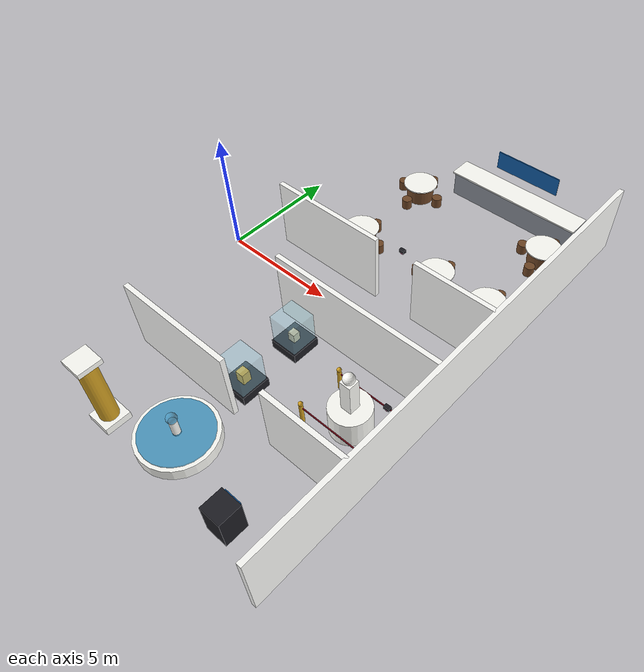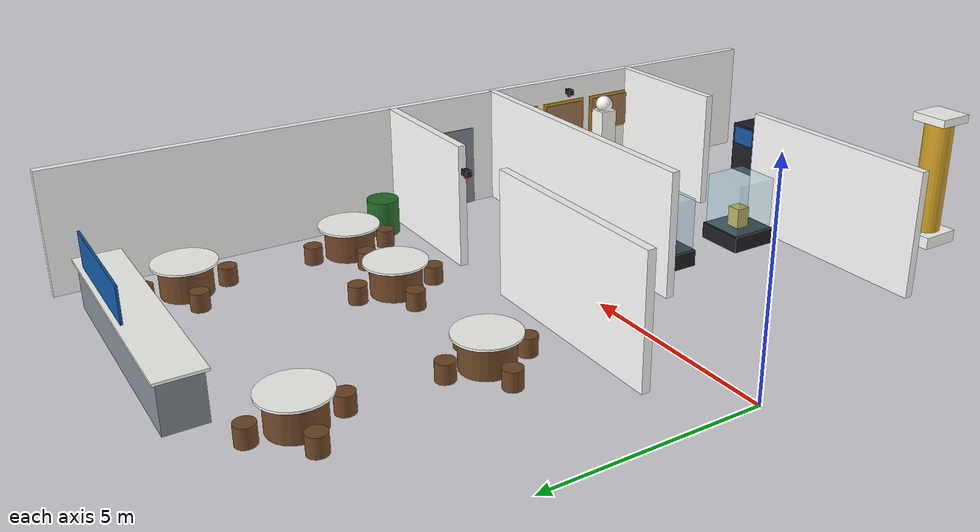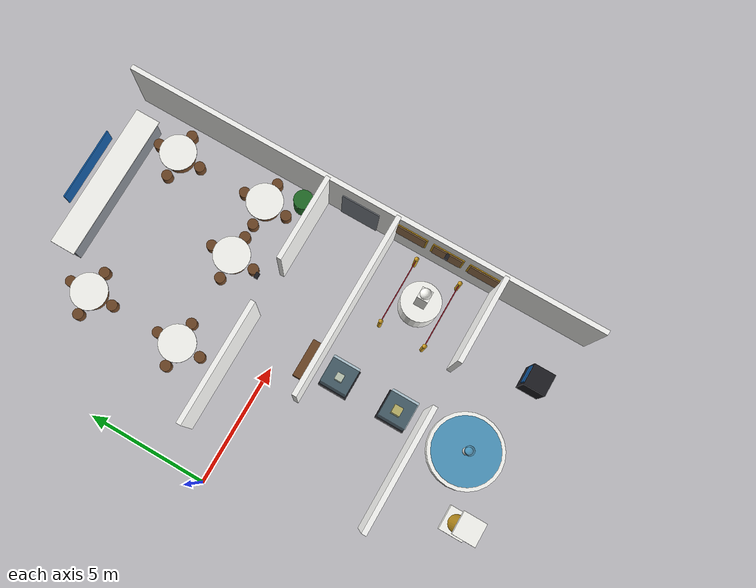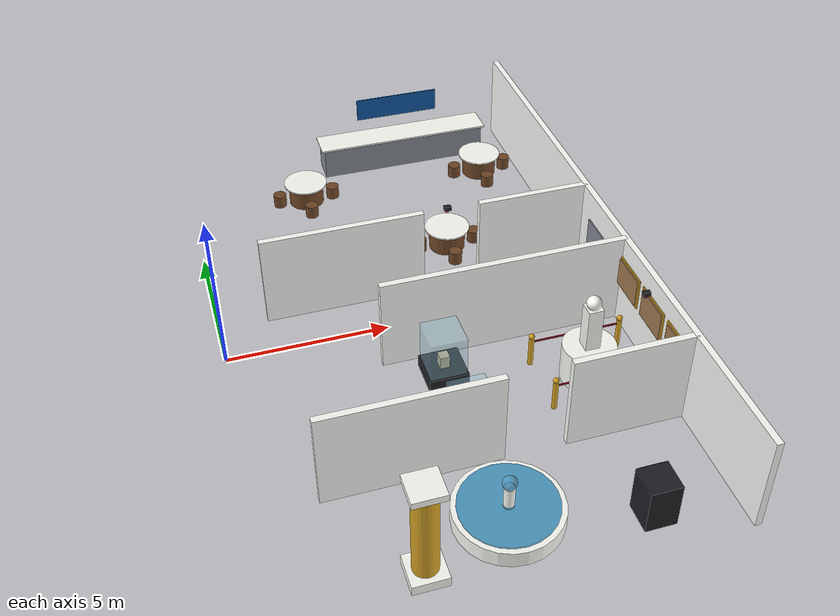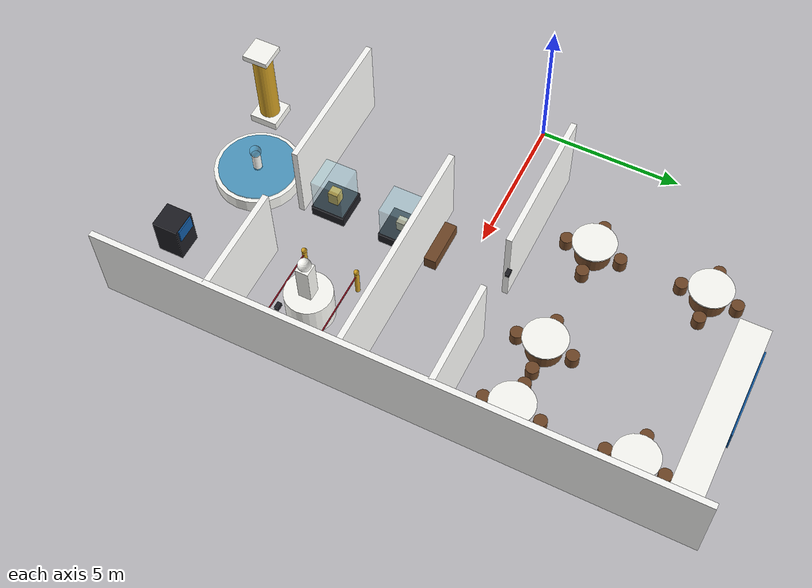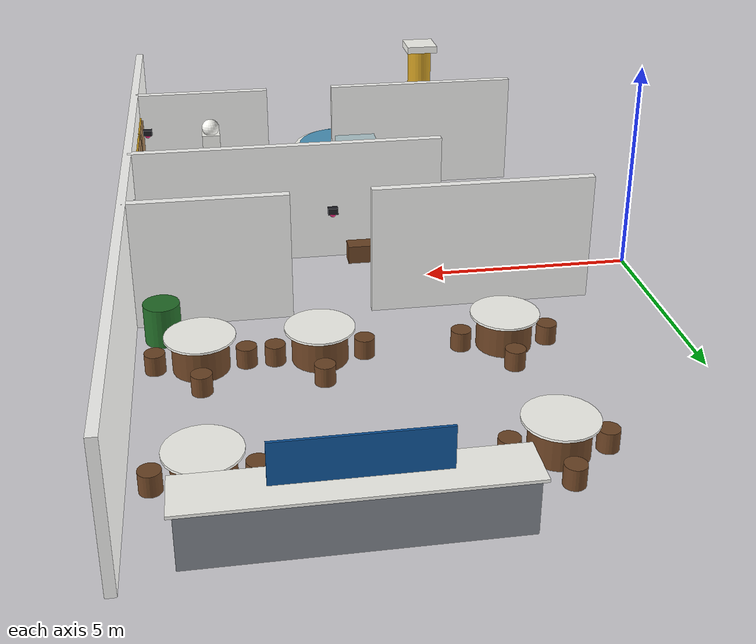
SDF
<sdf version="1.9">
 <world name="museum_world">
  <model name="centennial_robotics_museum">
   <static>true</static>
   <link name="outer_e_0">
    <pose>12.0 0.0 1.5 0 0 0.0</pose>
    <visual name="visual">
     <geometry><box><size>0.2 20.2 3.0</size></box></geometry>
     <material>
      <ambient>0.88 0.88 0.86 1.0</ambient>
      <diffuse>1.0 1.0 0.9889999999999999 1.0</diffuse>
      <specular>0.1 0.1 0.1 1</specular>
      <emissive>0.0 0.0 0.0 1</emissive>
     </material>
    </visual>
    <collision name="collision"><geometry><box><size>0.2 20.2 3.0</size></box></geometry></collision>
   </link>
   <link name="div_s_2">
    <pose>4.050000000000001 -6.0 1.5 0 0 0.0</pose>
    <visual name="visual">
     <geometry><box><size>5.1000000000000005 0.2 3.0</size></box></geometry>
     <material>
      <ambient>0.88 0.88 0.86 1.0</ambient>
      <diffuse>1.0 1.0 0.9889999999999999 1.0</diffuse>
      <specular>0.1 0.1 0.1 1</specular>
      <emissive>0.0 0.0 0.0 1</emissive>
     </material>
    </visual>
    <collision name="collision">
     <geometry><box><size>5.1000000000000005 0.2 3.0</size></box></geometry>
    </collision>
   </link>
   <link name="div_s_3">
    <pose>10.2 -6.0 1.5 0 0 0.0</pose>
    <visual name="visual">
     <geometry><box><size>3.5999999999999996 0.2 3.0</size></box></geometry>
     <material>
      <ambient>0.88 0.88 0.86 1.0</ambient>
      <diffuse>1.0 1.0 0.9889999999999999 1.0</diffuse>
      <specular>0.1 0.1 0.1 1</specular>
      <emissive>0.0 0.0 0.0 1</emissive>
     </material>
    </visual>
    <collision name="collision">
     <geometry><box><size>3.5999999999999996 0.2 3.0</size></box></geometry>
    </collision>
   </link>
   <link name="div_m_3">
    <pose>8.2 -1.5 1.5 0 0 0.0</pose>
    <visual name="visual">
     <geometry><box><size>7.6 0.2 3.0</size></box></geometry>
     <material>
      <ambient>0.88 0.88 0.86 1.0</ambient>
      <diffuse>1.0 1.0 0.9889999999999999 1.0</diffuse>
      <specular>0.1 0.1 0.1 1</specular>
      <emissive>0.0 0.0 0.0 1</emissive>
     </material>
    </visual>
    <collision name="collision"><geometry><box><size>7.6 0.2 3.0</size></box></geometry></collision>
   </link>
   <link name="div_n_2">
    <pose>4.050000000000001 1.5 1.5 0 0 0.0</pose>
    <visual name="visual">
     <geometry><box><size>5.1000000000000005 0.2 3.0</size></box></geometry>
     <material>
      <ambient>0.88 0.88 0.86 1.0</ambient>
      <diffuse>1.0 1.0 0.9889999999999999 1.0</diffuse>
      <specular>0.1 0.1 0.1 1</specular>
      <emissive>0.0 0.0 0.0 1</emissive>
     </material>
    </visual>
    <collision name="collision">
     <geometry><box><size>5.1000000000000005 0.2 3.0</size></box></geometry>
    </collision>
   </link>
   <link name="div_n_3">
    <pose>10.2 1.5 1.5 0 0 0.0</pose>
    <visual name="visual">
     <geometry><box><size>3.5999999999999996 0.2 3.0</size></box></geometry>
     <material>
      <ambient>0.88 0.88 0.86 1.0</ambient>
      <diffuse>1.0 1.0 0.9889999999999999 1.0</diffuse>
      <specular>0.1 0.1 0.1 1</specular>
      <emissive>0.0 0.0 0.0 1</emissive>
     </material>
    </visual>
    <collision name="collision">
     <geometry><box><size>3.5999999999999996 0.2 3.0</size></box></geometry>
    </collision>
   </link>
   <link name="fountain_basin">
    <pose>6.0 -8.0 0.25 0 0 0</pose>
    <visual name="visual">
     <geometry><cylinder><radius>1.5</radius><length>0.5</length></cylinder></geometry>
     <material>
      <ambient>0.9 0.89 0.85 1.0</ambient>
      <diffuse>1.0 1.0 0.9774999999999999 1.0</diffuse>
      <specular>0.8 0.8 0.8 1</specular>
      <emissive>0.0 0.0 0.0 1</emissive>
     </material>
    </visual>
    <collision name="collision">
     <geometry><cylinder><radius>1.5</radius><length>0.5</length></cylinder></geometry>
    </collision>
   </link>
   <link name="fountain_water">
    <pose>6.0 -8.0 0.52 0 0 0</pose>
    <visual name="visual">
     <geometry><cylinder><radius>1.35</radius><length>0.08</length></cylinder></geometry>
     <material>
      <ambient>0.05 0.42 0.62 0.7</ambient>
      <diffuse>0.057499999999999996 0.48299999999999993 0.713 0.7</diffuse>
      <specular>0.1 0.1 0.1 1</specular>
      <emissive>0.02 0.16 0.26 1</emissive>
     </material>
     <transparency>0.30</transparency>
    </visual>
   </link>
   <link name="fountain_spout">
    <pose>6.0 -8.0 0.85 0 0 0</pose>
    <visual name="visual">
     <geometry><cylinder><radius>0.15</radius><length>0.7</length></cylinder></geometry>
     <material>
      <ambient>0.9 0.89 0.85 1.0</ambient>
      <diffuse>1.0 1.0 0.9774999999999999 1.0</diffuse>
      <specular>0.8 0.8 0.8 1</specular>
      <emissive>0.0 0.0 0.0 1</emissive>
     </material>
    </visual>
   </link>
   <link name="fountain_droplet">
    <pose>6.0 -8.0 1.35 0 0 0.0</pose>
    <visual name="visual">
     <geometry><sphere><radius>0.2</radius></sphere></geometry>
     <material>
      <ambient>0.05 0.42 0.62 0.7</ambient>
      <diffuse>0.057499999999999996 0.48299999999999993 0.713 0.7</diffuse>
      <specular>0.1 0.1 0.1 1</specular>
      <emissive>0.02 0.16 0.26 1</emissive>
     </material>
     <transparency>0.30</transparency>
    </visual>
   </link>
   <link name="pillar_r_base">
    <pose>3.5 -9.0 0.15 0 0 0.0</pose>
    <visual name="visual">
     <geometry><box><size>1.0 1.0 0.3</size></box></geometry>
     <material>
      <ambient>0.9 0.89 0.85 1.0</ambient>
      <diffuse>1.0 1.0 0.9774999999999999 1.0</diffuse>
      <specular>0.8 0.8 0.8 1</specular>
      <emissive>0.0 0.0 0.0 1</emissive>
     </material>
    </visual>
    <collision name="collision"><geometry><box><size>1.0 1.0 0.3</size></box></geometry></collision>
   </link>
   <link name="pillar_r">
    <pose>3.5 -9.0 1.65 0 0 0</pose>
    <visual name="visual">
     <geometry><cylinder><radius>0.35</radius><length>3.0</length></cylinder></geometry>
     <material>
      <ambient>0.72 0.55 0.12 1.0</ambient>
      <diffuse>0.828 0.6325 0.13799999999999998 1.0</diffuse>
      <specular>1.0 0.9 0.6 1</specular>
      <emissive>0.0 0.0 0.0 1</emissive>
     </material>
    </visual>
    <collision name="collision">
     <geometry><cylinder><radius>0.35</radius><length>3.0</length></cylinder></geometry>
    </collision>
   </link>
   <link name="pillar_r_cap">
    <pose>3.5 -9.0 3.2 0 0 0.0</pose>
    <visual name="visual">
     <geometry><box><size>0.9 0.9 0.2</size></box></geometry>
     <material>
      <ambient>0.9 0.89 0.85 1.0</ambient>
      <diffuse>1.0 1.0 0.9774999999999999 1.0</diffuse>
      <specular>0.8 0.8 0.8 1</specular>
      <emissive>0.0 0.0 0.0 1</emissive>
     </material>
    </visual>
    <collision name="collision"><geometry><box><size>0.9 0.9 0.2</size></box></geometry></collision>
   </link>
   <link name="info_kiosk">
    <pose>9.6 -9.0 0.7 0 0 0.0</pose>
    <visual name="visual">
     <geometry><box><size>0.9 0.9 1.4</size></box></geometry>
     <material>
      <ambient>0.1 0.1 0.12 1.0</ambient>
      <diffuse>0.11499999999999999 0.11499999999999999 0.13799999999999998 1.0</diffuse>
      <specular>0.3 0.3 0.3 1</specular>
      <emissive>0.0 0.0 0.0 1</emissive>
     </material>
    </visual>
    <collision name="collision"><geometry><box><size>0.9 0.9 1.4</size></box></geometry></collision>
   </link>
   <link name="kiosk_screen">
    <pose>9.6 -8.53 1.1 0 0 0.0</pose>
    <visual name="visual">
     <geometry><box><size>0.7 0.05 0.5</size></box></geometry>
     <material>
      <ambient>0.05 0.3 0.55 1.0</ambient>
      <diffuse>0.057499999999999996 0.345 0.6325 1.0</diffuse>
      <specular>0.1 0.1 0.1 1</specular>
      <emissive>0.03 0.25 0.45 1</emissive>
     </material>
    </visual>
   </link>
   <link name="statue_pedestal">
    <pose>10.0 -3.75 0.6 0 0 0</pose>
    <visual name="visual">
     <geometry><cylinder><radius>0.8</radius><length>1.2</length></cylinder></geometry>
     <material>
      <ambient>0.9 0.89 0.85 1.0</ambient>
      <diffuse>1.0 1.0 0.9774999999999999 1.0</diffuse>
      <specular>0.8 0.8 0.8 1</specular>
      <emissive>0.0 0.0 0.0 1</emissive>
     </material>
    </visual>
    <collision name="collision">
     <geometry><cylinder><radius>0.8</radius><length>1.2</length></cylinder></geometry>
    </collision>
   </link>
   <link name="statue_body">
    <pose>10.0 -3.75 1.9 0 0 0.0</pose>
    <visual name="visual">
     <geometry><box><size>0.45 0.45 1.4</size></box></geometry>
     <material>
      <ambient>0.9 0.89 0.85 1.0</ambient>
      <diffuse>1.0 1.0 0.9774999999999999 1.0</diffuse>
      <specular>0.8 0.8 0.8 1</specular>
      <emissive>0.0 0.0 0.0 1</emissive>
     </material>
    </visual>
    <collision name="collision"><geometry><box><size>0.45 0.45 1.4</size></box></geometry></collision>
   </link>
   <link name="statue_head">
    <pose>10.0 -3.75 2.75 0 0 0.0</pose>
    <visual name="visual">
     <geometry><sphere><radius>0.22</radius></sphere></geometry>
     <material>
      <ambient>0.9 0.89 0.85 1.0</ambient>
      <diffuse>1.0 1.0 0.9774999999999999 1.0</diffuse>
      <specular>0.8 0.8 0.8 1</specular>
      <emissive>0.0 0.0 0.0 1</emissive>
     </material>
    </visual>
    <collision name="collision"><geometry><sphere><radius>0.22</radius></sphere></geometry></collision>
   </link>
   <link name="rope_post_0">
    <pose>8.6 -2.8 0.5 0 0 0</pose>
    <visual name="visual">
     <geometry><cylinder><radius>0.08</radius><length>1.0</length></cylinder></geometry>
     <material>
      <ambient>0.72 0.55 0.12 1.0</ambient>
      <diffuse>0.828 0.6325 0.13799999999999998 1.0</diffuse>
      <specular>1.0 0.9 0.6 1</specular>
      <emissive>0.0 0.0 0.0 1</emissive>
     </material>
    </visual>
    <collision name="collision">
     <geometry><cylinder><radius>0.08</radius><length>1.0</length></cylinder></geometry>
    </collision>
   </link>
   <link name="rope_knob_0">
    <pose>8.6 -2.8 1.05 0 0 0.0</pose>
    <visual name="visual">
     <geometry><sphere><radius>0.09</radius></sphere></geometry>
     <material>
      <ambient>0.72 0.55 0.12 1.0</ambient>
      <diffuse>0.828 0.6325 0.13799999999999998 1.0</diffuse>
      <specular>1.0 0.9 0.6 1</specular>
      <emissive>0.0 0.0 0.0 1</emissive>
     </material>
    </visual>
   </link>
   <link name="rope_post_1">
    <pose>8.6 -4.7 0.5 0 0 0</pose>
    <visual name="visual">
     <geometry><cylinder><radius>0.08</radius><length>1.0</length></cylinder></geometry>
     <material>
      <ambient>0.72 0.55 0.12 1.0</ambient>
      <diffuse>0.828 0.6325 0.13799999999999998 1.0</diffuse>
      <specular>1.0 0.9 0.6 1</specular>
      <emissive>0.0 0.0 0.0 1</emissive>
     </material>
    </visual>
    <collision name="collision">
     <geometry><cylinder><radius>0.08</radius><length>1.0</length></cylinder></geometry>
    </collision>
   </link>
   <link name="rope_knob_1">
    <pose>8.6 -4.7 1.05 0 0 0.0</pose>
    <visual name="visual">
     <geometry><sphere><radius>0.09</radius></sphere></geometry>
     <material>
      <ambient>0.72 0.55 0.12 1.0</ambient>
      <diffuse>0.828 0.6325 0.13799999999999998 1.0</diffuse>
      <specular>1.0 0.9 0.6 1</specular>
      <emissive>0.0 0.0 0.0 1</emissive>
     </material>
    </visual>
   </link>
   <link name="rope_post_2">
    <pose>11.4 -2.8 0.5 0 0 0</pose>
    <visual name="visual">
     <geometry><cylinder><radius>0.08</radius><length>1.0</length></cylinder></geometry>
     <material>
      <ambient>0.72 0.55 0.12 1.0</ambient>
      <diffuse>0.828 0.6325 0.13799999999999998 1.0</diffuse>
      <specular>1.0 0.9 0.6 1</specular>
      <emissive>0.0 0.0 0.0 1</emissive>
     </material>
    </visual>
    <collision name="collision">
     <geometry><cylinder><radius>0.08</radius><length>1.0</length></cylinder></geometry>
    </collision>
   </link>
   <link name="rope_knob_2">
    <pose>11.4 -2.8 1.05 0 0 0.0</pose>
    <visual name="visual">
     <geometry><sphere><radius>0.09</radius></sphere></geometry>
     <material>
      <ambient>0.72 0.55 0.12 1.0</ambient>
      <diffuse>0.828 0.6325 0.13799999999999998 1.0</diffuse>
      <specular>1.0 0.9 0.6 1</specular>
      <emissive>0.0 0.0 0.0 1</emissive>
     </material>
    </visual>
   </link>
   <link name="rope_post_3">
    <pose>11.4 -4.7 0.5 0 0 0</pose>
    <visual name="visual">
     <geometry><cylinder><radius>0.08</radius><length>1.0</length></cylinder></geometry>
     <material>
      <ambient>0.72 0.55 0.12 1.0</ambient>
      <diffuse>0.828 0.6325 0.13799999999999998 1.0</diffuse>
      <specular>1.0 0.9 0.6 1</specular>
      <emissive>0.0 0.0 0.0 1</emissive>
     </material>
    </visual>
    <collision name="collision">
     <geometry><cylinder><radius>0.08</radius><length>1.0</length></cylinder></geometry>
    </collision>
   </link>
   <link name="rope_knob_3">
    <pose>11.4 -4.7 1.05 0 0 0.0</pose>
    <visual name="visual">
     <geometry><sphere><radius>0.09</radius></sphere></geometry>
     <material>
      <ambient>0.72 0.55 0.12 1.0</ambient>
      <diffuse>0.828 0.6325 0.13799999999999998 1.0</diffuse>
      <specular>1.0 0.9 0.6 1</specular>
      <emissive>0.0 0.0 0.0 1</emissive>
     </material>
    </visual>
   </link>
   <link name="rope_span_a">
    <pose>10.0 -2.8 0.85 0 0 0.0</pose>
    <visual name="visual">
     <geometry><box><size>2.8 0.04 0.04</size></box></geometry>
     <material>
      <ambient>0.45 0.05 0.1 1.0</ambient>
      <diffuse>0.5175 0.057499999999999996 0.11499999999999999 1.0</diffuse>
      <specular>0.2 0.2 0.2 1</specular>
      <emissive>0.0 0.0 0.0 1</emissive>
     </material>
    </visual>
   </link>
   <link name="rope_span_b">
    <pose>10.0 -4.7 0.85 0 0 0.0</pose>
    <visual name="visual">
     <geometry><box><size>2.8 0.04 0.04</size></box></geometry>
     <material>
      <ambient>0.45 0.05 0.1 1.0</ambient>
      <diffuse>0.5175 0.057499999999999996 0.11499999999999999 1.0</diffuse>
      <specular>0.2 0.2 0.2 1</specular>
      <emissive>0.0 0.0 0.0 1</emissive>
     </material>
    </visual>
   </link>
   <link name="display_case_1_base">
    <pose>6.0 -5.0 0.2 0 0 0.0</pose>
    <visual name="visual">
     <geometry><box><size>1.2 1.2 0.4</size></box></geometry>
     <material>
      <ambient>0.1 0.1 0.12 1.0</ambient>
      <diffuse>0.11499999999999999 0.11499999999999999 0.13799999999999998 1.0</diffuse>
      <specular>0.3 0.3 0.3 1</specular>
      <emissive>0.0 0.0 0.0 1</emissive>
     </material>
    </visual>
    <collision name="collision"><geometry><box><size>1.2 1.2 0.4</size></box></geometry></collision>
   </link>
   <link name="display_case_1_glass">
    <pose>6.0 -5.0 1.05 0 0 0.0</pose>
    <visual name="visual">
     <geometry><box><size>1.1 1.1 1.3</size></box></geometry>
     <material>
      <ambient>0.55 0.78 0.85 0.35</ambient>
      <diffuse>0.6325 0.8969999999999999 0.9774999999999999 0.35</diffuse>
      <specular>1.0 1.0 1.0 1</specular>
      <emissive>0.0 0.0 0.0 1</emissive>
     </material>
     <transparency>0.65</transparency>
    </visual>
    <collision name="collision"><geometry><box><size>1.1 1.1 1.3</size></box></geometry></collision>
   </link>
   <link name="relic_1">
    <pose>6.0 -5.0 0.65 0 0 0.0</pose>
    <visual name="visual">
     <geometry><box><size>0.35 0.35 0.5</size></box></geometry>
     <material>
      <ambient>0.72 0.55 0.12 1.0</ambient>
      <diffuse>0.828 0.6325 0.13799999999999998 1.0</diffuse>
      <specular>1.0 0.9 0.6 1</specular>
      <emissive>0.0 0.0 0.0 1</emissive>
     </material>
    </visual>
   </link>
   <link name="display_case_2_base">
    <pose>6.0 -2.5 0.2 0 0 0.0</pose>
    <visual name="visual">
     <geometry><box><size>1.2 1.2 0.4</size></box></geometry>
     <material>
      <ambient>0.1 0.1 0.12 1.0</ambient>
      <diffuse>0.11499999999999999 0.11499999999999999 0.13799999999999998 1.0</diffuse>
      <specular>0.3 0.3 0.3 1</specular>
      <emissive>0.0 0.0 0.0 1</emissive>
     </material>
    </visual>
    <collision name="collision"><geometry><box><size>1.2 1.2 0.4</size></box></geometry></collision>
   </link>
   <link name="display_case_2_glass">
    <pose>6.0 -2.5 1.05 0 0 0.0</pose>
    <visual name="visual">
     <geometry><box><size>1.1 1.1 1.3</size></box></geometry>
     <material>
      <ambient>0.55 0.78 0.85 0.35</ambient>
      <diffuse>0.6325 0.8969999999999999 0.9774999999999999 0.35</diffuse>
      <specular>1.0 1.0 1.0 1</specular>
      <emissive>0.0 0.0 0.0 1</emissive>
     </material>
     <transparency>0.65</transparency>
    </visual>
    <collision name="collision"><geometry><box><size>1.1 1.1 1.3</size></box></geometry></collision>
   </link>
   <link name="relic_2">
    <pose>6.0 -2.5 0.6 0 0 0.0</pose>
    <visual name="visual">
     <geometry><box><size>0.3 0.3 0.4</size></box></geometry>
     <material>
      <ambient>0.72 0.66 0.52 1.0</ambient>
      <diffuse>0.828 0.759 0.598 1.0</diffuse>
      <specular>0.15 0.15 0.15 1</specular>
      <emissive>0.0 0.0 0.0 1</emissive>
     </material>
    </visual>
   </link>
   <link name="painting_0">
    <pose>11.85 -2.2 1.85 0 0 0.0</pose>
    <visual name="visual">
     <geometry><box><size>0.06 1.2 0.9</size></box></geometry>
     <material>
      <ambient>0.55 0.42 0.28 1.0</ambient>
      <diffuse>0.6325 0.48299999999999993 0.322 1.0</diffuse>
      <specular>0.1 0.1 0.1 1</specular>
      <emissive>0.0 0.0 0.0 1</emissive>
     </material>
    </visual>
   </link>
   <link name="painting_frame_0">
    <pose>11.88 -2.2 1.85 0 0 0.0</pose>
    <visual name="visual">
     <geometry><box><size>0.04 1.34 1.04</size></box></geometry>
     <material>
      <ambient>0.72 0.55 0.12 1.0</ambient>
      <diffuse>0.828 0.6325 0.13799999999999998 1.0</diffuse>
      <specular>1.0 0.9 0.6 1</specular>
      <emissive>0.0 0.0 0.0 1</emissive>
     </material>
    </visual>
   </link>
   <link name="painting_1">
    <pose>11.85 -3.75 1.85 0 0 0.0</pose>
    <visual name="visual">
     <geometry><box><size>0.06 1.2 0.9</size></box></geometry>
     <material>
      <ambient>0.55 0.42 0.28 1.0</ambient>
      <diffuse>0.6325 0.48299999999999993 0.322 1.0</diffuse>
      <specular>0.1 0.1 0.1 1</specular>
      <emissive>0.0 0.0 0.0 1</emissive>
     </material>
    </visual>
   </link>
   <link name="painting_frame_1">
    <pose>11.88 -3.75 1.85 0 0 0.0</pose>
    <visual name="visual">
     <geometry><box><size>0.04 1.34 1.04</size></box></geometry>
     <material>
      <ambient>0.72 0.55 0.12 1.0</ambient>
      <diffuse>0.828 0.6325 0.13799999999999998 1.0</diffuse>
      <specular>1.0 0.9 0.6 1</specular>
      <emissive>0.0 0.0 0.0 1</emissive>
     </material>
    </visual>
   </link>
   <link name="painting_2">
    <pose>11.85 -5.3 1.85 0 0 0.0</pose>
    <visual name="visual">
     <geometry><box><size>0.06 1.2 0.9</size></box></geometry>
     <material>
      <ambient>0.55 0.42 0.28 1.0</ambient>
      <diffuse>0.6325 0.48299999999999993 0.322 1.0</diffuse>
      <specular>0.1 0.1 0.1 1</specular>
      <emissive>0.0 0.0 0.0 1</emissive>
     </material>
    </visual>
   </link>
   <link name="painting_frame_2">
    <pose>11.88 -5.3 1.85 0 0 0.0</pose>
    <visual name="visual">
     <geometry><box><size>0.04 1.34 1.04</size></box></geometry>
     <material>
      <ambient>0.72 0.55 0.12 1.0</ambient>
      <diffuse>0.828 0.6325 0.13799999999999998 1.0</diffuse>
      <specular>1.0 0.9 0.6 1</specular>
      <emissive>0.0 0.0 0.0 1</emissive>
     </material>
    </visual>
   </link>
   <link name="cafe_counter">
    <pose>8.0 9.2 0.55 0 0 0.0</pose>
    <visual name="visual">
     <geometry><box><size>6.0 0.9 1.1</size></box></geometry>
     <material>
      <ambient>0.45 0.47 0.5 1.0</ambient>
      <diffuse>0.5175 0.5405 0.575 1.0</diffuse>
      <specular>0.7 0.7 0.7 1</specular>
      <emissive>0.0 0.0 0.0 1</emissive>
     </material>
    </visual>
    <collision name="collision"><geometry><box><size>6.0 0.9 1.1</size></box></geometry></collision>
   </link>
   <link name="cafe_counter_top">
    <pose>8.0 9.2 1.13 0 0 0.0</pose>
    <visual name="visual">
     <geometry><box><size>6.2 1.05 0.06</size></box></geometry>
     <material>
      <ambient>0.9 0.89 0.85 1.0</ambient>
      <diffuse>1.0 1.0 0.9774999999999999 1.0</diffuse>
      <specular>0.8 0.8 0.8 1</specular>
      <emissive>0.0 0.0 0.0 1</emissive>
     </material>
    </visual>
    <collision name="collision"><geometry><box><size>6.2 1.05 0.06</size></box></geometry></collision>
   </link>
   <link name="cafe_menu">
    <pose>8.0 9.75 2.0 0 0 0.0</pose>
    <visual name="visual">
     <geometry><box><size>3.0 0.05 0.8</size></box></geometry>
     <material>
      <ambient>0.05 0.3 0.55 1.0</ambient>
      <diffuse>0.057499999999999996 0.345 0.6325 1.0</diffuse>
      <specular>0.1 0.1 0.1 1</specular>
      <emissive>0.03 0.25 0.45 1</emissive>
     </material>
    </visual>
   </link>
   <link name="cafe_table_0">
    <pose>4.0 3.5 0.37 0 0 0</pose>
    <visual name="visual">
     <geometry><cylinder><radius>0.6</radius><length>0.74</length></cylinder></geometry>
     <material>
      <ambient>0.38 0.24 0.13 1.0</ambient>
      <diffuse>0.43699999999999994 0.27599999999999997 0.1495 1.0</diffuse>
      <specular>0.2 0.2 0.2 1</specular>
      <emissive>0.0 0.0 0.0 1</emissive>
     </material>
    </visual>
    <collision name="collision">
     <geometry><cylinder><radius>0.6</radius><length>0.74</length></cylinder></geometry>
    </collision>
   </link>
   <link name="cafe_table_top_0">
    <pose>4.0 3.5 0.76 0 0 0</pose>
    <visual name="visual">
     <geometry><cylinder><radius>0.75</radius><length>0.05</length></cylinder></geometry>
     <material>
      <ambient>0.9 0.89 0.85 1.0</ambient>
      <diffuse>1.0 1.0 0.9774999999999999 1.0</diffuse>
      <specular>0.8 0.8 0.8 1</specular>
      <emissive>0.0 0.0 0.0 1</emissive>
     </material>
    </visual>
   </link>
   <link name="cafe_chair_0_0">
    <pose>4.95 3.5 0.22 0 0 0</pose>
    <visual name="visual">
     <geometry><cylinder><radius>0.22</radius><length>0.44</length></cylinder></geometry>
     <material>
      <ambient>0.38 0.24 0.13 1.0</ambient>
      <diffuse>0.43699999999999994 0.27599999999999997 0.1495 1.0</diffuse>
      <specular>0.2 0.2 0.2 1</specular>
      <emissive>0.0 0.0 0.0 1</emissive>
     </material>
    </visual>
    <collision name="collision">
     <geometry><cylinder><radius>0.22</radius><length>0.44</length></cylinder></geometry>
    </collision>
   </link>
   <link name="cafe_chair_0_1">
    <pose>3.05 3.5 0.22 0 0 0</pose>
    <visual name="visual">
     <geometry><cylinder><radius>0.22</radius><length>0.44</length></cylinder></geometry>
     <material>
      <ambient>0.38 0.24 0.13 1.0</ambient>
      <diffuse>0.43699999999999994 0.27599999999999997 0.1495 1.0</diffuse>
      <specular>0.2 0.2 0.2 1</specular>
      <emissive>0.0 0.0 0.0 1</emissive>
     </material>
    </visual>
    <collision name="collision">
     <geometry><cylinder><radius>0.22</radius><length>0.44</length></cylinder></geometry>
    </collision>
   </link>
   <link name="cafe_chair_0_2">
    <pose>4.0 4.45 0.22 0 0 0</pose>
    <visual name="visual">
     <geometry><cylinder><radius>0.22</radius><length>0.44</length></cylinder></geometry>
     <material>
      <ambient>0.38 0.24 0.13 1.0</ambient>
      <diffuse>0.43699999999999994 0.27599999999999997 0.1495 1.0</diffuse>
      <specular>0.2 0.2 0.2 1</specular>
      <emissive>0.0 0.0 0.0 1</emissive>
     </material>
    </visual>
    <collision name="collision">
     <geometry><cylinder><radius>0.22</radius><length>0.44</length></cylinder></geometry>
    </collision>
   </link>
   <link name="cafe_chair_0_3">
    <pose>4.0 2.55 0.22 0 0 0</pose>
    <visual name="visual">
     <geometry><cylinder><radius>0.22</radius><length>0.44</length></cylinder></geometry>
     <material>
      <ambient>0.38 0.24 0.13 1.0</ambient>
      <diffuse>0.43699999999999994 0.27599999999999997 0.1495 1.0</diffuse>
      <specular>0.2 0.2 0.2 1</specular>
      <emissive>0.0 0.0 0.0 1</emissive>
     </material>
    </visual>
    <collision name="collision">
     <geometry><cylinder><radius>0.22</radius><length>0.44</length></cylinder></geometry>
    </collision>
   </link>
   <link name="cafe_table_1">
    <pose>8.0 3.5 0.37 0 0 0</pose>
    <visual name="visual">
     <geometry><cylinder><radius>0.6</radius><length>0.74</length></cylinder></geometry>
     <material>
      <ambient>0.38 0.24 0.13 1.0</ambient>
      <diffuse>0.43699999999999994 0.27599999999999997 0.1495 1.0</diffuse>
      <specular>0.2 0.2 0.2 1</specular>
      <emissive>0.0 0.0 0.0 1</emissive>
     </material>
    </visual>
    <collision name="collision">
     <geometry><cylinder><radius>0.6</radius><length>0.74</length></cylinder></geometry>
    </collision>
   </link>
   <link name="cafe_table_top_1">
    <pose>8.0 3.5 0.76 0 0 0</pose>
    <visual name="visual">
     <geometry><cylinder><radius>0.75</radius><length>0.05</length></cylinder></geometry>
     <material>
      <ambient>0.9 0.89 0.85 1.0</ambient>
      <diffuse>1.0 1.0 0.9774999999999999 1.0</diffuse>
      <specular>0.8 0.8 0.8 1</specular>
      <emissive>0.0 0.0 0.0 1</emissive>
     </material>
    </visual>
   </link>
   <link name="cafe_chair_1_0">
    <pose>8.95 3.5 0.22 0 0 0</pose>
    <visual name="visual">
     <geometry><cylinder><radius>0.22</radius><length>0.44</length></cylinder></geometry>
     <material>
      <ambient>0.38 0.24 0.13 1.0</ambient>
      <diffuse>0.43699999999999994 0.27599999999999997 0.1495 1.0</diffuse>
      <specular>0.2 0.2 0.2 1</specular>
      <emissive>0.0 0.0 0.0 1</emissive>
     </material>
    </visual>
    <collision name="collision">
     <geometry><cylinder><radius>0.22</radius><length>0.44</length></cylinder></geometry>
    </collision>
   </link>
   <link name="cafe_chair_1_1">
    <pose>7.05 3.5 0.22 0 0 0</pose>
    <visual name="visual">
     <geometry><cylinder><radius>0.22</radius><length>0.44</length></cylinder></geometry>
     <material>
      <ambient>0.38 0.24 0.13 1.0</ambient>
      <diffuse>0.43699999999999994 0.27599999999999997 0.1495 1.0</diffuse>
      <specular>0.2 0.2 0.2 1</specular>
      <emissive>0.0 0.0 0.0 1</emissive>
     </material>
    </visual>
    <collision name="collision">
     <geometry><cylinder><radius>0.22</radius><length>0.44</length></cylinder></geometry>
    </collision>
   </link>
   <link name="cafe_chair_1_2">
    <pose>8.0 4.45 0.22 0 0 0</pose>
    <visual name="visual">
     <geometry><cylinder><radius>0.22</radius><length>0.44</length></cylinder></geometry>
     <material>
      <ambient>0.38 0.24 0.13 1.0</ambient>
      <diffuse>0.43699999999999994 0.27599999999999997 0.1495 1.0</diffuse>
      <specular>0.2 0.2 0.2 1</specular>
      <emissive>0.0 0.0 0.0 1</emissive>
     </material>
    </visual>
    <collision name="collision">
     <geometry><cylinder><radius>0.22</radius><length>0.44</length></cylinder></geometry>
    </collision>
   </link>
   <link name="cafe_chair_1_3">
    <pose>8.0 2.55 0.22 0 0 0</pose>
    <visual name="visual">
     <geometry><cylinder><radius>0.22</radius><length>0.44</length></cylinder></geometry>
     <material>
      <ambient>0.38 0.24 0.13 1.0</ambient>
      <diffuse>0.43699999999999994 0.27599999999999997 0.1495 1.0</diffuse>
      <specular>0.2 0.2 0.2 1</specular>
      <emissive>0.0 0.0 0.0 1</emissive>
     </material>
    </visual>
    <collision name="collision">
     <geometry><cylinder><radius>0.22</radius><length>0.44</length></cylinder></geometry>
    </collision>
   </link>
   <link name="cafe_table_2">
    <pose>4.0 7.5 0.37 0 0 0</pose>
    <visual name="visual">
     <geometry><cylinder><radius>0.6</radius><length>0.74</length></cylinder></geometry>
     <material>
      <ambient>0.38 0.24 0.13 1.0</ambient>
      <diffuse>0.43699999999999994 0.27599999999999997 0.1495 1.0</diffuse>
      <specular>0.2 0.2 0.2 1</specular>
      <emissive>0.0 0.0 0.0 1</emissive>
     </material>
    </visual>
    <collision name="collision">
     <geometry><cylinder><radius>0.6</radius><length>0.74</length></cylinder></geometry>
    </collision>
   </link>
   <link name="cafe_table_top_2">
    <pose>4.0 7.5 0.76 0 0 0</pose>
    <visual name="visual">
     <geometry><cylinder><radius>0.75</radius><length>0.05</length></cylinder></geometry>
     <material>
      <ambient>0.9 0.89 0.85 1.0</ambient>
      <diffuse>1.0 1.0 0.9774999999999999 1.0</diffuse>
      <specular>0.8 0.8 0.8 1</specular>
      <emissive>0.0 0.0 0.0 1</emissive>
     </material>
    </visual>
   </link>
   <link name="cafe_chair_2_0">
    <pose>4.95 7.5 0.22 0 0 0</pose>
    <visual name="visual">
     <geometry><cylinder><radius>0.22</radius><length>0.44</length></cylinder></geometry>
     <material>
      <ambient>0.38 0.24 0.13 1.0</ambient>
      <diffuse>0.43699999999999994 0.27599999999999997 0.1495 1.0</diffuse>
      <specular>0.2 0.2 0.2 1</specular>
      <emissive>0.0 0.0 0.0 1</emissive>
     </material>
    </visual>
    <collision name="collision">
     <geometry><cylinder><radius>0.22</radius><length>0.44</length></cylinder></geometry>
    </collision>
   </link>
   <link name="cafe_chair_2_1">
    <pose>3.05 7.5 0.22 0 0 0</pose>
    <visual name="visual">
     <geometry><cylinder><radius>0.22</radius><length>0.44</length></cylinder></geometry>
     <material>
      <ambient>0.38 0.24 0.13 1.0</ambient>
      <diffuse>0.43699999999999994 0.27599999999999997 0.1495 1.0</diffuse>
      <specular>0.2 0.2 0.2 1</specular>
      <emissive>0.0 0.0 0.0 1</emissive>
     </material>
    </visual>
    <collision name="collision">
     <geometry><cylinder><radius>0.22</radius><length>0.44</length></cylinder></geometry>
    </collision>
   </link>
   <link name="cafe_chair_2_2">
    <pose>4.0 8.45 0.22 0 0 0</pose>
    <visual name="visual">
     <geometry><cylinder><radius>0.22</radius><length>0.44</length></cylinder></geometry>
     <material>
      <ambient>0.38 0.24 0.13 1.0</ambient>
      <diffuse>0.43699999999999994 0.27599999999999997 0.1495 1.0</diffuse>
      <specular>0.2 0.2 0.2 1</specular>
      <emissive>0.0 0.0 0.0 1</emissive>
     </material>
    </visual>
    <collision name="collision">
     <geometry><cylinder><radius>0.22</radius><length>0.44</length></cylinder></geometry>
    </collision>
   </link>
   <link name="cafe_chair_2_3">
    <pose>4.0 6.55 0.22 0 0 0</pose>
    <visual name="visual">
     <geometry><cylinder><radius>0.22</radius><length>0.44</length></cylinder></geometry>
     <material>
      <ambient>0.38 0.24 0.13 1.0</ambient>
      <diffuse>0.43699999999999994 0.27599999999999997 0.1495 1.0</diffuse>
      <specular>0.2 0.2 0.2 1</specular>
      <emissive>0.0 0.0 0.0 1</emissive>
     </material>
    </visual>
    <collision name="collision">
     <geometry><cylinder><radius>0.22</radius><length>0.44</length></cylinder></geometry>
    </collision>
   </link>
   <link name="cafe_table_3">
    <pose>10.5 7.5 0.37 0 0 0</pose>
    <visual name="visual">
     <geometry><cylinder><radius>0.6</radius><length>0.74</length></cylinder></geometry>
     <material>
      <ambient>0.38 0.24 0.13 1.0</ambient>
      <diffuse>0.43699999999999994 0.27599999999999997 0.1495 1.0</diffuse>
      <specular>0.2 0.2 0.2 1</specular>
      <emissive>0.0 0.0 0.0 1</emissive>
     </material>
    </visual>
    <collision name="collision">
     <geometry><cylinder><radius>0.6</radius><length>0.74</length></cylinder></geometry>
    </collision>
   </link>
   <link name="cafe_table_top_3">
    <pose>10.5 7.5 0.76 0 0 0</pose>
    <visual name="visual">
     <geometry><cylinder><radius>0.75</radius><length>0.05</length></cylinder></geometry>
     <material>
      <ambient>0.9 0.89 0.85 1.0</ambient>
      <diffuse>1.0 1.0 0.9774999999999999 1.0</diffuse>
      <specular>0.8 0.8 0.8 1</specular>
      <emissive>0.0 0.0 0.0 1</emissive>
     </material>
    </visual>
   </link>
   <link name="cafe_chair_3_0">
    <pose>11.45 7.5 0.22 0 0 0</pose>
    <visual name="visual">
     <geometry><cylinder><radius>0.22</radius><length>0.44</length></cylinder></geometry>
     <material>
      <ambient>0.38 0.24 0.13 1.0</ambient>
      <diffuse>0.43699999999999994 0.27599999999999997 0.1495 1.0</diffuse>
      <specular>0.2 0.2 0.2 1</specular>
      <emissive>0.0 0.0 0.0 1</emissive>
     </material>
    </visual>
    <collision name="collision">
     <geometry><cylinder><radius>0.22</radius><length>0.44</length></cylinder></geometry>
    </collision>
   </link>
   <link name="cafe_chair_3_1">
    <pose>9.55 7.5 0.22 0 0 0</pose>
    <visual name="visual">
     <geometry><cylinder><radius>0.22</radius><length>0.44</length></cylinder></geometry>
     <material>
      <ambient>0.38 0.24 0.13 1.0</ambient>
      <diffuse>0.43699999999999994 0.27599999999999997 0.1495 1.0</diffuse>
      <specular>0.2 0.2 0.2 1</specular>
      <emissive>0.0 0.0 0.0 1</emissive>
     </material>
    </visual>
    <collision name="collision">
     <geometry><cylinder><radius>0.22</radius><length>0.44</length></cylinder></geometry>
    </collision>
   </link>
   <link name="cafe_chair_3_2">
    <pose>10.5 8.45 0.22 0 0 0</pose>
    <visual name="visual">
     <geometry><cylinder><radius>0.22</radius><length>0.44</length></cylinder></geometry>
     <material>
      <ambient>0.38 0.24 0.13 1.0</ambient>
      <diffuse>0.43699999999999994 0.27599999999999997 0.1495 1.0</diffuse>
      <specular>0.2 0.2 0.2 1</specular>
      <emissive>0.0 0.0 0.0 1</emissive>
     </material>
    </visual>
    <collision name="collision">
     <geometry><cylinder><radius>0.22</radius><length>0.44</length></cylinder></geometry>
    </collision>
   </link>
   <link name="cafe_chair_3_3">
    <pose>10.5 6.55 0.22 0 0 0</pose>
    <visual name="visual">
     <geometry><cylinder><radius>0.22</radius><length>0.44</length></cylinder></geometry>
     <material>
      <ambient>0.38 0.24 0.13 1.0</ambient>
      <diffuse>0.43699999999999994 0.27599999999999997 0.1495 1.0</diffuse>
      <specular>0.2 0.2 0.2 1</specular>
      <emissive>0.0 0.0 0.0 1</emissive>
     </material>
    </visual>
    <collision name="collision">
     <geometry><cylinder><radius>0.22</radius><length>0.44</length></cylinder></geometry>
    </collision>
   </link>
   <link name="cafe_table_4">
    <pose>10.5 3.5 0.37 0 0 0</pose>
    <visual name="visual">
     <geometry><cylinder><radius>0.6</radius><length>0.74</length></cylinder></geometry>
     <material>
      <ambient>0.38 0.24 0.13 1.0</ambient>
      <diffuse>0.43699999999999994 0.27599999999999997 0.1495 1.0</diffuse>
      <specular>0.2 0.2 0.2 1</specular>
      <emissive>0.0 0.0 0.0 1</emissive>
     </material>
    </visual>
    <collision name="collision">
     <geometry><cylinder><radius>0.6</radius><length>0.74</length></cylinder></geometry>
    </collision>
   </link>
   <link name="cafe_table_top_4">
    <pose>10.5 3.5 0.76 0 0 0</pose>
    <visual name="visual">
     <geometry><cylinder><radius>0.75</radius><length>0.05</length></cylinder></geometry>
     <material>
      <ambient>0.9 0.89 0.85 1.0</ambient>
      <diffuse>1.0 1.0 0.9774999999999999 1.0</diffuse>
      <specular>0.8 0.8 0.8 1</specular>
      <emissive>0.0 0.0 0.0 1</emissive>
     </material>
    </visual>
   </link>
   <link name="cafe_chair_4_0">
    <pose>11.45 3.5 0.22 0 0 0</pose>
    <visual name="visual">
     <geometry><cylinder><radius>0.22</radius><length>0.44</length></cylinder></geometry>
     <material>
      <ambient>0.38 0.24 0.13 1.0</ambient>
      <diffuse>0.43699999999999994 0.27599999999999997 0.1495 1.0</diffuse>
      <specular>0.2 0.2 0.2 1</specular>
      <emissive>0.0 0.0 0.0 1</emissive>
     </material>
    </visual>
    <collision name="collision">
     <geometry><cylinder><radius>0.22</radius><length>0.44</length></cylinder></geometry>
    </collision>
   </link>
   <link name="cafe_chair_4_1">
    <pose>9.55 3.5 0.22 0 0 0</pose>
    <visual name="visual">
     <geometry><cylinder><radius>0.22</radius><length>0.44</length></cylinder></geometry>
     <material>
      <ambient>0.38 0.24 0.13 1.0</ambient>
      <diffuse>0.43699999999999994 0.27599999999999997 0.1495 1.0</diffuse>
      <specular>0.2 0.2 0.2 1</specular>
      <emissive>0.0 0.0 0.0 1</emissive>
     </material>
    </visual>
    <collision name="collision">
     <geometry><cylinder><radius>0.22</radius><length>0.44</length></cylinder></geometry>
    </collision>
   </link>
   <link name="cafe_chair_4_2">
    <pose>10.5 4.45 0.22 0 0 0</pose>
    <visual name="visual">
     <geometry><cylinder><radius>0.22</radius><length>0.44</length></cylinder></geometry>
     <material>
      <ambient>0.38 0.24 0.13 1.0</ambient>
      <diffuse>0.43699999999999994 0.27599999999999997 0.1495 1.0</diffuse>
      <specular>0.2 0.2 0.2 1</specular>
      <emissive>0.0 0.0 0.0 1</emissive>
     </material>
    </visual>
    <collision name="collision">
     <geometry><cylinder><radius>0.22</radius><length>0.44</length></cylinder></geometry>
    </collision>
   </link>
   <link name="cafe_chair_4_3">
    <pose>10.5 2.55 0.22 0 0 0</pose>
    <visual name="visual">
     <geometry><cylinder><radius>0.22</radius><length>0.44</length></cylinder></geometry>
     <material>
      <ambient>0.38 0.24 0.13 1.0</ambient>
      <diffuse>0.43699999999999994 0.27599999999999997 0.1495 1.0</diffuse>
      <specular>0.2 0.2 0.2 1</specular>
      <emissive>0.0 0.0 0.0 1</emissive>
     </material>
    </visual>
    <collision name="collision">
     <geometry><cylinder><radius>0.22</radius><length>0.44</length></cylinder></geometry>
    </collision>
   </link>
   <link name="cafe_plant">
    <pose>11.3 2.2 0.45 0 0 0</pose>
    <visual name="visual">
     <geometry><cylinder><radius>0.4</radius><length>0.9</length></cylinder></geometry>
     <material>
      <ambient>0.12 0.38 0.14 1.0</ambient>
      <diffuse>0.13799999999999998 0.43699999999999994 0.161 1.0</diffuse>
      <specular>0.1 0.1 0.1 1</specular>
      <emissive>0.0 0.0 0.0 1</emissive>
     </material>
    </visual>
    <collision name="collision">
     <geometry><cylinder><radius>0.4</radius><length>0.9</length></cylinder></geometry>
    </collision>
   </link>
   <link name="corridor_bench_e">
    <pose>6.0 -1.1 0.22 0 0 0.0</pose>
    <visual name="visual">
     <geometry><box><size>1.6 0.42 0.45</size></box></geometry>
     <material>
      <ambient>0.38 0.24 0.13 1.0</ambient>
      <diffuse>0.43699999999999994 0.27599999999999997 0.1495 1.0</diffuse>
      <specular>0.2 0.2 0.2 1</specular>
      <emissive>0.0 0.0 0.0 1</emissive>
     </material>
    </visual>
    <collision name="collision"><geometry><box><size>1.6 0.42 0.45</size></box></geometry></collision>
   </link>
   <link name="service_door">
    <pose>11.88 0.0 1.05 0 0 0.0</pose>
    <visual name="visual">
     <geometry><box><size>0.04 1.6 2.1</size></box></geometry>
     <material>
      <ambient>0.45 0.47 0.5 1.0</ambient>
      <diffuse>0.5175 0.5405 0.575 1.0</diffuse>
      <specular>0.7 0.7 0.7 1</specular>
      <emissive>0.0 0.0 0.0 1</emissive>
     </material>
    </visual>
   </link>
   <link name="camera_5">
    <pose>11.6 -3.75 2.7 0 0 0.0</pose>
    <visual name="visual">
     <geometry><box><size>0.22 0.14 0.14</size></box></geometry>
     <material>
      <ambient>0.1 0.1 0.12 1.0</ambient>
      <diffuse>0.11499999999999999 0.11499999999999999 0.13799999999999998 1.0</diffuse>
      <specular>0.3 0.3 0.3 1</specular>
      <emissive>0.0 0.0 0.0 1</emissive>
     </material>
    </visual>
   </link>
   <link name="camera_lens_5">
    <pose>11.6 -3.75 2.62 0 0 0.0</pose>
    <visual name="visual">
     <geometry><sphere><radius>0.07</radius></sphere></geometry>
     <material>
      <ambient>0.85 0.15 0.45 1.0</ambient>
      <diffuse>0.9774999999999999 0.1725 0.5175 1.0</diffuse>
      <specular>0.1 0.1 0.1 1</specular>
      <emissive>0.75 0.1 0.38 1</emissive>
     </material>
    </visual>
   </link>
   <link name="camera_7">
    <pose>7.5 1.9 2.7 0 0 0.0</pose>
    <visual name="visual">
     <geometry><box><size>0.22 0.14 0.14</size></box></geometry>
     <material>
      <ambient>0.1 0.1 0.12 1.0</ambient>
      <diffuse>0.11499999999999999 0.11499999999999999 0.13799999999999998 1.0</diffuse>
      <specular>0.3 0.3 0.3 1</specular>
      <emissive>0.0 0.0 0.0 1</emissive>
     </material>
    </visual>
   </link>
   <link name="camera_lens_7">
    <pose>7.5 1.9 2.62 0 0 0.0</pose>
    <visual name="visual">
     <geometry><sphere><radius>0.07</radius></sphere></geometry>
     <material>
      <ambient>0.85 0.15 0.45 1.0</ambient>
      <diffuse>0.9774999999999999 0.1725 0.5175 1.0</diffuse>
      <specular>0.1 0.1 0.1 1</specular>
      <emissive>0.75 0.1 0.38 1</emissive>
     </material>
    </visual>
   </link>
  </model>
 </world>
</sdf>
